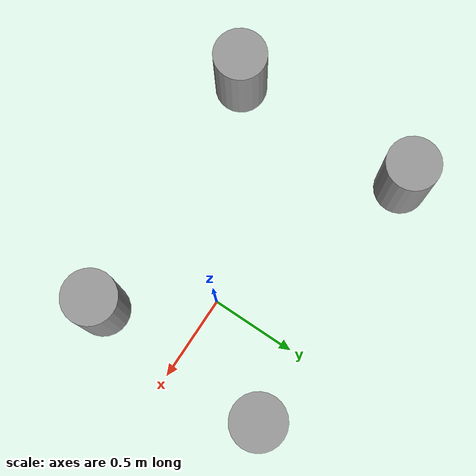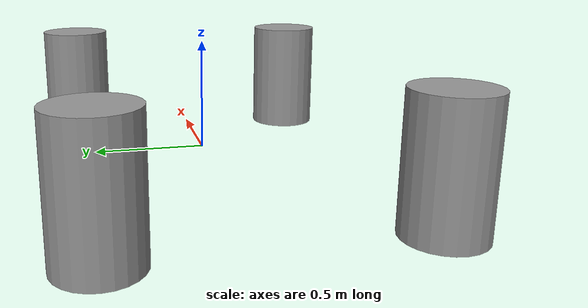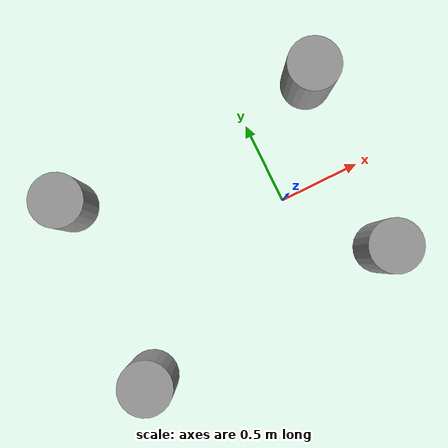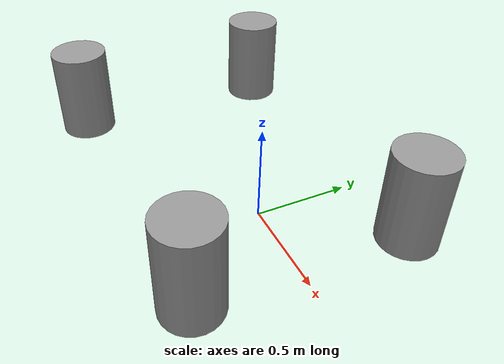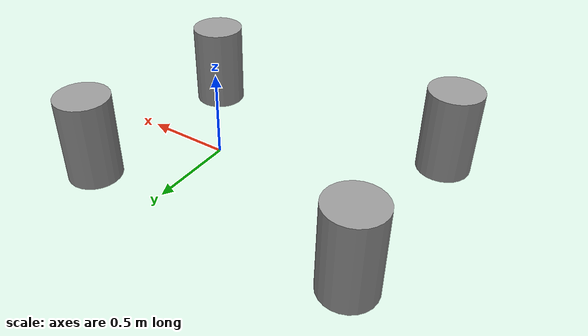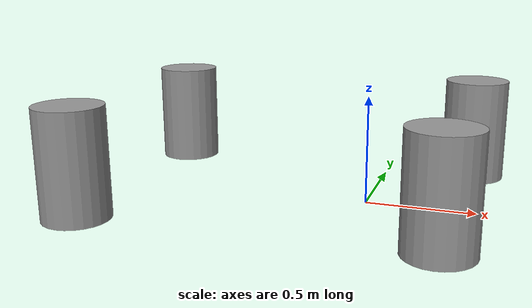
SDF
<sdf version="1.7">
 <world name="default">
  <physics name="default_physics" default="0" type="ode">
   <max_step_size>0.001</max_step_size>
   <real_time_factor>1</real_time_factor>
   <real_time_update_rate>1000</real_time_update_rate>
  </physics>
  <scene><ambient>0.4 0.4 0.4 1</ambient><background>0.7 0.7 0.7 1</background><shadows>0</shadows></scene>
  <light name="sun" type="directional">
   <pose>0 0 10 0 -0 0</pose>
   <diffuse>0.8 0.8 0.8 1</diffuse>
   <specular>0.1 0.1 0.1 1</specular>
   <attenuation>
    <range>1000</range>
    <constant>0.9</constant>
    <linear>0.01</linear>
    <quadratic>0.001</quadratic>
   </attenuation>
   <direction>-0.5 0.5 -1</direction>
   <spot><inner_angle>0</inner_angle><outer_angle>0</outer_angle><falloff>0</falloff></spot>
  </light>
  <gravity>0 0 -9.8</gravity>
  <magnetic_field>6e-06 2.3e-05 -4.2e-05</magnetic_field>
  <atmosphere type="adiabatic"/>
  <spherical_coordinates>
   <surface_model>EARTH_WGS84</surface_model>
   <latitude_deg>0</latitude_deg>
   <longitude_deg>0</longitude_deg>
   <elevation>0</elevation>
   <heading_deg>0</heading_deg>
  </spherical_coordinates>
  <model name="unit_cylinder">
   <pose>-1.14427 0.517252 0.255162 -3e-06 -2e-06 -5e-06</pose>
   <link name="link">
    <inertial>
     <mass>1</mass>
     <inertia><ixx>0.145833</ixx><ixy>0</ixy><ixz>0</ixz><iyy>0.145833</iyy><iyz>0</iyz><izz>0.125</izz></inertia>
    </inertial>
    <collision name="collision">
     <geometry><cylinder><radius>0.153213</radius><length>0.500324</length></cylinder></geometry>
    </collision>
    <visual name="visual">
     <geometry><cylinder><radius>0.153213</radius><length>0.500324</length></cylinder></geometry>
     <material>
      <script><name>Gazebo/Grey</name><uri>file://media/materials/scripts/gazebo.material</uri></script>
     </material>
    </visual>
   </link>
  </model>
  <model name="unit_cylinder_clone">
   <pose>-1.1518 -0.597509 0.255152 2e-06 0 -2e-06</pose>
   <link name="link">
    <inertial>
     <mass>1</mass>
     <inertia><ixx>0.145833</ixx><ixy>0</ixy><ixz>0</ixz><iyy>0.145833</iyy><iyz>0</iyz><izz>0.125</izz></inertia>
    </inertial>
    <collision name="collision">
     <geometry><cylinder><radius>0.153213</radius><length>0.500324</length></cylinder></geometry>
    </collision>
    <visual name="visual">
     <geometry><cylinder><radius>0.153213</radius><length>0.500324</length></cylinder></geometry>
     <material>
      <script><name>Gazebo/Grey</name><uri>file://media/materials/scripts/gazebo.material</uri></script>
     </material>
    </visual>
   </link>
  </model>
  <model name="unit_cylinder_clone_0">
   <pose>0.389682 -0.508433 0.255166 -2.4e-05 -5e-06 -3e-06</pose>
   <link name="link">
    <inertial>
     <mass>1</mass>
     <inertia><ixx>0.145833</ixx><ixy>0</ixy><ixz>0</ixz><iyy>0.145833</iyy><iyz>0</iyz><izz>0.125</izz></inertia>
    </inertial>
    <collision name="collision">
     <geometry><cylinder><radius>0.153213</radius><length>0.500324</length></cylinder></geometry>
    </collision>
    <visual name="visual">
     <geometry><cylinder><radius>0.153213</radius><length>0.500324</length></cylinder></geometry>
     <material>
      <script><name>Gazebo/Grey</name><uri>file://media/materials/scripts/gazebo.material</uri></script>
     </material>
    </visual>
   </link>
  </model>
  <model name="unit_cylinder_clone_1">
   <pose>0.436228 0.568459 0.255165 -2.1e-05 -6e-06 -3e-06</pose>
   <link name="link">
    <inertial>
     <mass>1</mass>
     <inertia><ixx>0.145833</ixx><ixy>0</ixy><ixz>0</ixz><iyy>0.145833</iyy><iyz>0</iyz><izz>0.125</izz></inertia>
    </inertial>
    <collision name="collision">
     <geometry><cylinder><radius>0.153213</radius><length>0.500324</length></cylinder></geometry>
    </collision>
    <visual name="visual">
     <geometry><cylinder><radius>0.153213</radius><length>0.500324</length></cylinder></geometry>
     <material>
      <script><name>Gazebo/Grey</name><uri>file://media/materials/scripts/gazebo.material</uri></script>
     </material>
    </visual>
   </link>
  </model>
 </world>
</sdf>
